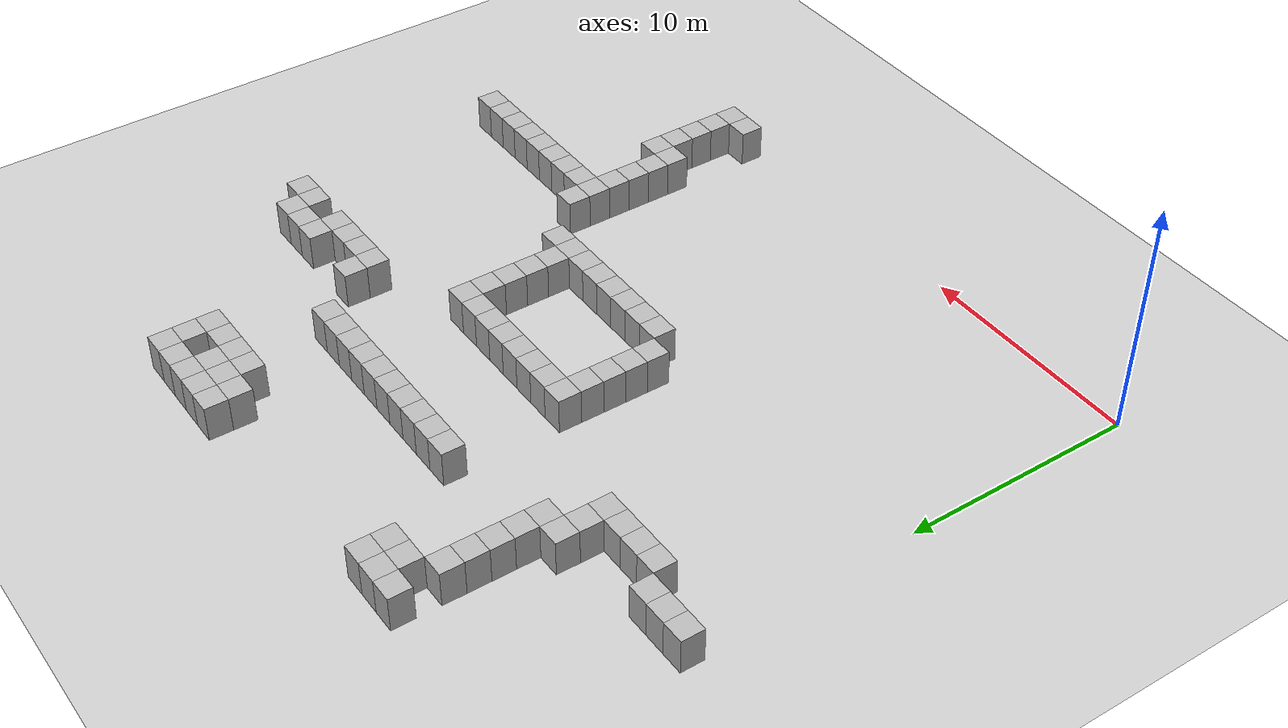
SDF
<sdf version="1.6">
 <world name="default">
  <model name="ground_plane">
   <static>1</static>
   <link name="link">
    <collision name="collision">
     <geometry><plane><normal>0 0 1</normal><size>100 100</size></plane></geometry>
     <surface>
      <contact><collide_bitmask>65535</collide_bitmask></contact>
      <friction><ode><mu>100</mu><mu2>50</mu2></ode></friction>
     </surface>
    </collision>
    <visual name="visual">
     <cast_shadows>0</cast_shadows>
     <geometry><plane><normal>0 0 1</normal><size>100 100</size></plane></geometry>
     <material>
      <script><uri>file://media/materials/scripts/gazebo.material</uri><name>Gazebo/Grey</name></script>
     </material>
    </visual>
   </link>
  </model>
  <light name="sun" type="directional">
   <pose>0 0 10 0 -0 0</pose>
   <diffuse>0.8 0.8 0.8 1</diffuse>
   <specular>0.2 0.2 0.2 1</specular>
   <attenuation>
    <range>1000</range>
    <constant>0.9</constant>
    <linear>0.01</linear>
    <quadratic>0.001</quadratic>
   </attenuation>
   <direction>-0.5 0.1 -0.9</direction>
  </light>
  <plugin name="obstacle" filename="libobstacle_plugin.so"/>
  <plugin name="model_push" filename="libpayload_joint_plugin.so"/>
  <plugin name="ros_interface_plugin" filename="librotors_gazebo_ros_interface_plugin.so"/>
  <spherical_coordinates>
   <surface_model>EARTH_WGS84</surface_model>
   <latitude_deg>47.3667</latitude_deg>
   <longitude_deg>8.55</longitude_deg>
   <elevation>500</elevation>
   <heading_deg>0</heading_deg>
  </spherical_coordinates>
  <physics name="default_physics" default="0" type="ode">
   <ode>
    <solver>
     <type>quick</type>
     <iters>100</iters>
     <sor>1.3</sor>
     <use_dynamic_moi_rescaling>0</use_dynamic_moi_rescaling>
    </solver>
    <constraints>
     <cfm>0</cfm>
     <erp>0.2</erp>
     <contact_max_correcting_vel>100</contact_max_correcting_vel>
     <contact_surface_layer>0.001</contact_surface_layer>
    </constraints>
   </ode>
   <max_step_size>0.004</max_step_size>
   <real_time_factor>1</real_time_factor>
   <real_time_update_rate>250</real_time_update_rate>
  </physics>
  <gravity>0 0 -9.8</gravity>
  <magnetic_field>6e-06 2.3e-05 -4.2e-05</magnetic_field>
  <atmosphere type="adiabatic"/>
  <scene><ambient>0.4 0.4 0.4 1</ambient><background>0.7 0.7 0.7 1</background><shadows>1</shadows></scene>
  <audio><device>default</device></audio>
  <model name="box_20">
   <static>1</static>
   <pose>0 20 0 0 -0 0</pose>
   <link name="link"><visual name="visual"><geometry><box><size>1 1 3</size></box></geometry></visual></link>
  </model>
  <model name="box_120">
   <static>1</static>
   <pose>1 20 0 0 -0 0</pose>
   <link name="link"><visual name="visual"><geometry><box><size>1 1 3</size></box></geometry></visual></link>
  </model>
  <model name="box_220">
   <static>1</static>
   <pose>2 20 0 0 -0 0</pose>
   <link name="link"><visual name="visual"><geometry><box><size>1 1 3</size></box></geometry></visual></link>
  </model>
  <model name="box_319">
   <static>1</static>
   <pose>3 19 0 0 -0 0</pose>
   <link name="link"><visual name="visual"><geometry><box><size>1 1 3</size></box></geometry></visual></link>
  </model>
  <model name="box_419">
   <static>1</static>
   <pose>4 19 0 0 -0 0</pose>
   <link name="link"><visual name="visual"><geometry><box><size>1 1 3</size></box></geometry></visual></link>
  </model>
  <model name="box_519">
   <static>1</static>
   <pose>5 19 0 0 -0 0</pose>
   <link name="link"><visual name="visual"><geometry><box><size>1 1 3</size></box></geometry></visual></link>
  </model>
  <model name="box_619">
   <static>1</static>
   <pose>6 19 0 0 -0 0</pose>
   <link name="link"><visual name="visual"><geometry><box><size>1 1 3</size></box></geometry></visual></link>
  </model>
  <model name="box_620">
   <static>1</static>
   <pose>6 20 0 0 -0 0</pose>
   <link name="link"><visual name="visual"><geometry><box><size>1 1 3</size></box></geometry></visual></link>
  </model>
  <model name="box_621">
   <static>1</static>
   <pose>6 21 0 0 -0 0</pose>
   <link name="link"><visual name="visual"><geometry><box><size>1 1 3</size></box></geometry></visual></link>
  </model>
  <model name="box_721">
   <static>1</static>
   <pose>7 21 0 0 -0 0</pose>
   <link name="link"><visual name="visual"><geometry><box><size>1 1 3</size></box></geometry></visual></link>
  </model>
  <model name="box_722">
   <static>1</static>
   <pose>7 22 0 0 -0 0</pose>
   <link name="link"><visual name="visual"><geometry><box><size>1 1 3</size></box></geometry></visual></link>
  </model>
  <model name="box_723">
   <static>1</static>
   <pose>7 23 0 0 -0 0</pose>
   <link name="link"><visual name="visual"><geometry><box><size>1 1 3</size></box></geometry></visual></link>
  </model>
  <model name="box_724">
   <static>1</static>
   <pose>7 24 0 0 -0 0</pose>
   <link name="link"><visual name="visual"><geometry><box><size>1 1 3</size></box></geometry></visual></link>
  </model>
  <model name="box_725">
   <static>1</static>
   <pose>7 25 0 0 -0 0</pose>
   <link name="link"><visual name="visual"><geometry><box><size>1 1 3</size></box></geometry></visual></link>
  </model>
  <model name="box_727">
   <static>1</static>
   <pose>7 27 0 0 -0 0</pose>
   <link name="link"><visual name="visual"><geometry><box><size>1 1 3</size></box></geometry></visual></link>
  </model>
  <model name="box_826">
   <static>1</static>
   <pose>8 26 0 0 -0 0</pose>
   <link name="link"><visual name="visual"><geometry><box><size>1 1 3</size></box></geometry></visual></link>
  </model>
  <model name="box_827">
   <static>1</static>
   <pose>8 27 0 0 -0 0</pose>
   <link name="link"><visual name="visual"><geometry><box><size>1 1 3</size></box></geometry></visual></link>
  </model>
  <model name="box_926">
   <static>1</static>
   <pose>9 26 0 0 -0 0</pose>
   <link name="link"><visual name="visual"><geometry><box><size>1 1 3</size></box></geometry></visual></link>
  </model>
  <model name="box_927">
   <static>1</static>
   <pose>9 27 0 0 -0 0</pose>
   <link name="link"><visual name="visual"><geometry><box><size>1 1 3</size></box></geometry></visual></link>
  </model>
  <model name="box_1213">
   <static>1</static>
   <pose>12 13 0 0 -0 0</pose>
   <link name="link"><visual name="visual"><geometry><box><size>1 1 3</size></box></geometry></visual></link>
  </model>
  <model name="box_1214">
   <static>1</static>
   <pose>12 14 0 0 -0 0</pose>
   <link name="link"><visual name="visual"><geometry><box><size>1 1 3</size></box></geometry></visual></link>
  </model>
  <model name="box_1215">
   <static>1</static>
   <pose>12 15 0 0 -0 0</pose>
   <link name="link"><visual name="visual"><geometry><box><size>1 1 3</size></box></geometry></visual></link>
  </model>
  <model name="box_1216">
   <static>1</static>
   <pose>12 16 0 0 -0 0</pose>
   <link name="link"><visual name="visual"><geometry><box><size>1 1 3</size></box></geometry></visual></link>
  </model>
  <model name="box_1217">
   <static>1</static>
   <pose>12 17 0 0 -0 0</pose>
   <link name="link"><visual name="visual"><geometry><box><size>1 1 3</size></box></geometry></visual></link>
  </model>
  <model name="box_1222">
   <static>1</static>
   <pose>12 22 0 0 -0 0</pose>
   <link name="link"><visual name="visual"><geometry><box><size>1 1 3</size></box></geometry></visual></link>
  </model>
  <model name="box_1312">
   <static>1</static>
   <pose>13 12 0 0 -0 0</pose>
   <link name="link"><visual name="visual"><geometry><box><size>1 1 3</size></box></geometry></visual></link>
  </model>
  <model name="box_1317">
   <static>1</static>
   <pose>13 17 0 0 -0 0</pose>
   <link name="link"><visual name="visual"><geometry><box><size>1 1 3</size></box></geometry></visual></link>
  </model>
  <model name="box_1322">
   <static>1</static>
   <pose>13 22 0 0 -0 0</pose>
   <link name="link"><visual name="visual"><geometry><box><size>1 1 3</size></box></geometry></visual></link>
  </model>
  <model name="box_1412">
   <static>1</static>
   <pose>14 12 0 0 -0 0</pose>
   <link name="link"><visual name="visual"><geometry><box><size>1 1 3</size></box></geometry></visual></link>
  </model>
  <model name="box_1417">
   <static>1</static>
   <pose>14 17 0 0 -0 0</pose>
   <link name="link"><visual name="visual"><geometry><box><size>1 1 3</size></box></geometry></visual></link>
  </model>
  <model name="box_1422">
   <static>1</static>
   <pose>14 22 0 0 -0 0</pose>
   <link name="link"><visual name="visual"><geometry><box><size>1 1 3</size></box></geometry></visual></link>
  </model>
  <model name="box_1512">
   <static>1</static>
   <pose>15 12 0 0 -0 0</pose>
   <link name="link"><visual name="visual"><geometry><box><size>1 1 3</size></box></geometry></visual></link>
  </model>
  <model name="box_1517">
   <static>1</static>
   <pose>15 17 0 0 -0 0</pose>
   <link name="link"><visual name="visual"><geometry><box><size>1 1 3</size></box></geometry></visual></link>
  </model>
  <model name="box_1522">
   <static>1</static>
   <pose>15 22 0 0 -0 0</pose>
   <link name="link"><visual name="visual"><geometry><box><size>1 1 3</size></box></geometry></visual></link>
  </model>
  <model name="box_1612">
   <static>1</static>
   <pose>16 12 0 0 -0 0</pose>
   <link name="link"><visual name="visual"><geometry><box><size>1 1 3</size></box></geometry></visual></link>
  </model>
  <model name="box_1617">
   <static>1</static>
   <pose>16 17 0 0 -0 0</pose>
   <link name="link"><visual name="visual"><geometry><box><size>1 1 3</size></box></geometry></visual></link>
  </model>
  <model name="box_1622">
   <static>1</static>
   <pose>16 22 0 0 -0 0</pose>
   <link name="link"><visual name="visual"><geometry><box><size>1 1 3</size></box></geometry></visual></link>
  </model>
  <model name="box_1712">
   <static>1</static>
   <pose>17 12 0 0 -0 0</pose>
   <link name="link"><visual name="visual"><geometry><box><size>1 1 3</size></box></geometry></visual></link>
  </model>
  <model name="box_1717">
   <static>1</static>
   <pose>17 17 0 0 -0 0</pose>
   <link name="link"><visual name="visual"><geometry><box><size>1 1 3</size></box></geometry></visual></link>
  </model>
  <model name="box_1722">
   <static>1</static>
   <pose>17 22 0 0 -0 0</pose>
   <link name="link"><visual name="visual"><geometry><box><size>1 1 3</size></box></geometry></visual></link>
  </model>
  <model name="box_1812">
   <static>1</static>
   <pose>18 12 0 0 -0 0</pose>
   <link name="link"><visual name="visual"><geometry><box><size>1 1 3</size></box></geometry></visual></link>
  </model>
  <model name="box_1817">
   <static>1</static>
   <pose>18 17 0 0 -0 0</pose>
   <link name="link"><visual name="visual"><geometry><box><size>1 1 3</size></box></geometry></visual></link>
  </model>
  <model name="box_1822">
   <static>1</static>
   <pose>18 22 0 0 -0 0</pose>
   <link name="link"><visual name="visual"><geometry><box><size>1 1 3</size></box></geometry></visual></link>
  </model>
  <model name="box_1912">
   <static>1</static>
   <pose>19 12 0 0 -0 0</pose>
   <link name="link"><visual name="visual"><geometry><box><size>1 1 3</size></box></geometry></visual></link>
  </model>
  <model name="box_1913">
   <static>1</static>
   <pose>19 13 0 0 -0 0</pose>
   <link name="link"><visual name="visual"><geometry><box><size>1 1 3</size></box></geometry></visual></link>
  </model>
  <model name="box_1914">
   <static>1</static>
   <pose>19 14 0 0 -0 0</pose>
   <link name="link"><visual name="visual"><geometry><box><size>1 1 3</size></box></geometry></visual></link>
  </model>
  <model name="box_1915">
   <static>1</static>
   <pose>19 15 0 0 -0 0</pose>
   <link name="link"><visual name="visual"><geometry><box><size>1 1 3</size></box></geometry></visual></link>
  </model>
  <model name="box_1916">
   <static>1</static>
   <pose>19 16 0 0 -0 0</pose>
   <link name="link"><visual name="visual"><geometry><box><size>1 1 3</size></box></geometry></visual></link>
  </model>
  <model name="box_1917">
   <static>1</static>
   <pose>19 17 0 0 -0 0</pose>
   <link name="link"><visual name="visual"><geometry><box><size>1 1 3</size></box></geometry></visual></link>
  </model>
  <model name="box_1922">
   <static>1</static>
   <pose>19 22 0 0 -0 0</pose>
   <link name="link"><visual name="visual"><geometry><box><size>1 1 3</size></box></geometry></visual></link>
  </model>
  <model name="box_1927">
   <static>1</static>
   <pose>19 27 0 0 -0 0</pose>
   <link name="link"><visual name="visual"><geometry><box><size>1 1 3</size></box></geometry></visual></link>
  </model>
  <model name="box_1928">
   <static>1</static>
   <pose>19 28 0 0 -0 0</pose>
   <link name="link"><visual name="visual"><geometry><box><size>1 1 3</size></box></geometry></visual></link>
  </model>
  <model name="box_2012">
   <static>1</static>
   <pose>20 12 0 0 -0 0</pose>
   <link name="link"><visual name="visual"><geometry><box><size>1 1 3</size></box></geometry></visual></link>
  </model>
  <model name="box_2022">
   <static>1</static>
   <pose>20 22 0 0 -0 0</pose>
   <link name="link"><visual name="visual"><geometry><box><size>1 1 3</size></box></geometry></visual></link>
  </model>
  <model name="box_2026">
   <static>1</static>
   <pose>20 26 0 0 -0 0</pose>
   <link name="link"><visual name="visual"><geometry><box><size>1 1 3</size></box></geometry></visual></link>
  </model>
  <model name="box_2027">
   <static>1</static>
   <pose>20 27 0 0 -0 0</pose>
   <link name="link"><visual name="visual"><geometry><box><size>1 1 3</size></box></geometry></visual></link>
  </model>
  <model name="box_2028">
   <static>1</static>
   <pose>20 28 0 0 -0 0</pose>
   <link name="link"><visual name="visual"><geometry><box><size>1 1 3</size></box></geometry></visual></link>
  </model>
  <model name="box_2122">
   <static>1</static>
   <pose>21 22 0 0 -0 0</pose>
   <link name="link"><visual name="visual"><geometry><box><size>1 1 3</size></box></geometry></visual></link>
  </model>
  <model name="box_2126">
   <static>1</static>
   <pose>21 26 0 0 -0 0</pose>
   <link name="link"><visual name="visual"><geometry><box><size>1 1 3</size></box></geometry></visual></link>
  </model>
  <model name="box_2127">
   <static>1</static>
   <pose>21 27 0 0 -0 0</pose>
   <link name="link"><visual name="visual"><geometry><box><size>1 1 3</size></box></geometry></visual></link>
  </model>
  <model name="box_2128">
   <static>1</static>
   <pose>21 28 0 0 -0 0</pose>
   <link name="link"><visual name="visual"><geometry><box><size>1 1 3</size></box></geometry></visual></link>
  </model>
  <model name="box_2201">
   <static>1</static>
   <pose>22 1 0 0 -0 0</pose>
   <link name="link"><visual name="visual"><geometry><box><size>1 1 3</size></box></geometry></visual></link>
  </model>
  <model name="box_2205">
   <static>1</static>
   <pose>22 5 0 0 -0 0</pose>
   <link name="link"><visual name="visual"><geometry><box><size>1 1 3</size></box></geometry></visual></link>
  </model>
  <model name="box_2206">
   <static>1</static>
   <pose>22 6 0 0 -0 0</pose>
   <link name="link"><visual name="visual"><geometry><box><size>1 1 3</size></box></geometry></visual></link>
  </model>
  <model name="box_2207">
   <static>1</static>
   <pose>22 7 0 0 -0 0</pose>
   <link name="link"><visual name="visual"><geometry><box><size>1 1 3</size></box></geometry></visual></link>
  </model>
  <model name="box_2208">
   <static>1</static>
   <pose>22 8 0 0 -0 0</pose>
   <link name="link"><visual name="visual"><geometry><box><size>1 1 3</size></box></geometry></visual></link>
  </model>
  <model name="box_2209">
   <static>1</static>
   <pose>22 9 0 0 -0 0</pose>
   <link name="link"><visual name="visual"><geometry><box><size>1 1 3</size></box></geometry></visual></link>
  </model>
  <model name="box_2210">
   <static>1</static>
   <pose>22 10 0 0 -0 0</pose>
   <link name="link"><visual name="visual"><geometry><box><size>1 1 3</size></box></geometry></visual></link>
  </model>
  <model name="box_2226">
   <static>1</static>
   <pose>22 26 0 0 -0 0</pose>
   <link name="link"><visual name="visual"><geometry><box><size>1 1 3</size></box></geometry></visual></link>
  </model>
  <model name="box_2228">
   <static>1</static>
   <pose>22 28 0 0 -0 0</pose>
   <link name="link"><visual name="visual"><geometry><box><size>1 1 3</size></box></geometry></visual></link>
  </model>
  <model name="box_2301">
   <static>1</static>
   <pose>23 1 0 0 -0 0</pose>
   <link name="link"><visual name="visual"><geometry><box><size>1 1 3</size></box></geometry></visual></link>
  </model>
  <model name="box_2302">
   <static>1</static>
   <pose>23 2 0 0 -0 0</pose>
   <link name="link"><visual name="visual"><geometry><box><size>1 1 3</size></box></geometry></visual></link>
  </model>
  <model name="box_2303">
   <static>1</static>
   <pose>23 3 0 0 -0 0</pose>
   <link name="link"><visual name="visual"><geometry><box><size>1 1 3</size></box></geometry></visual></link>
  </model>
  <model name="box_2304">
   <static>1</static>
   <pose>23 4 0 0 -0 0</pose>
   <link name="link"><visual name="visual"><geometry><box><size>1 1 3</size></box></geometry></visual></link>
  </model>
  <model name="box_2305">
   <static>1</static>
   <pose>23 5 0 0 -0 0</pose>
   <link name="link"><visual name="visual"><geometry><box><size>1 1 3</size></box></geometry></visual></link>
  </model>
  <model name="box_2309">
   <static>1</static>
   <pose>23 9 0 0 -0 0</pose>
   <link name="link"><visual name="visual"><geometry><box><size>1 1 3</size></box></geometry></visual></link>
  </model>
  <model name="box_2319">
   <static>1</static>
   <pose>23 19 0 0 -0 0</pose>
   <link name="link"><visual name="visual"><geometry><box><size>1 1 3</size></box></geometry></visual></link>
  </model>
  <model name="box_2320">
   <static>1</static>
   <pose>23 20 0 0 -0 0</pose>
   <link name="link"><visual name="visual"><geometry><box><size>1 1 3</size></box></geometry></visual></link>
  </model>
  <model name="box_2326">
   <static>1</static>
   <pose>23 26 0 0 -0 0</pose>
   <link name="link"><visual name="visual"><geometry><box><size>1 1 3</size></box></geometry></visual></link>
  </model>
  <model name="box_2327">
   <static>1</static>
   <pose>23 27 0 0 -0 0</pose>
   <link name="link"><visual name="visual"><geometry><box><size>1 1 3</size></box></geometry></visual></link>
  </model>
  <model name="box_2328">
   <static>1</static>
   <pose>23 28 0 0 -0 0</pose>
   <link name="link"><visual name="visual"><geometry><box><size>1 1 3</size></box></geometry></visual></link>
  </model>
  <model name="box_2409">
   <static>1</static>
   <pose>24 9 0 0 -0 0</pose>
   <link name="link"><visual name="visual"><geometry><box><size>1 1 3</size></box></geometry></visual></link>
  </model>
  <model name="box_2419">
   <static>1</static>
   <pose>24 19 0 0 -0 0</pose>
   <link name="link"><visual name="visual"><geometry><box><size>1 1 3</size></box></geometry></visual></link>
  </model>
  <model name="box_2509">
   <static>1</static>
   <pose>25 9 0 0 -0 0</pose>
   <link name="link"><visual name="visual"><geometry><box><size>1 1 3</size></box></geometry></visual></link>
  </model>
  <model name="box_2519">
   <static>1</static>
   <pose>25 19 0 0 -0 0</pose>
   <link name="link"><visual name="visual"><geometry><box><size>1 1 3</size></box></geometry></visual></link>
  </model>
  <model name="box_2609">
   <static>1</static>
   <pose>26 9 0 0 -0 0</pose>
   <link name="link"><visual name="visual"><geometry><box><size>1 1 3</size></box></geometry></visual></link>
  </model>
  <model name="box_2619">
   <static>1</static>
   <pose>26 19 0 0 -0 0</pose>
   <link name="link"><visual name="visual"><geometry><box><size>1 1 3</size></box></geometry></visual></link>
  </model>
  <model name="box_2620">
   <static>1</static>
   <pose>26 20 0 0 -0 0</pose>
   <link name="link"><visual name="visual"><geometry><box><size>1 1 3</size></box></geometry></visual></link>
  </model>
  <model name="box_2709">
   <static>1</static>
   <pose>27 9 0 0 -0 0</pose>
   <link name="link"><visual name="visual"><geometry><box><size>1 1 3</size></box></geometry></visual></link>
  </model>
  <model name="box_2720">
   <static>1</static>
   <pose>27 20 0 0 -0 0</pose>
   <link name="link"><visual name="visual"><geometry><box><size>1 1 3</size></box></geometry></visual></link>
  </model>
  <model name="box_2809">
   <static>1</static>
   <pose>28 9 0 0 -0 0</pose>
   <link name="link"><visual name="visual"><geometry><box><size>1 1 3</size></box></geometry></visual></link>
  </model>
  <model name="box_2819">
   <static>1</static>
   <pose>28 19 0 0 -0 0</pose>
   <link name="link"><visual name="visual"><geometry><box><size>1 1 3</size></box></geometry></visual></link>
  </model>
  <model name="box_2820">
   <static>1</static>
   <pose>28 20 0 0 -0 0</pose>
   <link name="link"><visual name="visual"><geometry><box><size>1 1 3</size></box></geometry></visual></link>
  </model>
  <model name="box_2909">
   <static>1</static>
   <pose>29 9 0 0 -0 0</pose>
   <link name="link"><visual name="visual"><geometry><box><size>1 1 3</size></box></geometry></visual></link>
  </model>
  <model name="box_2919">
   <static>1</static>
   <pose>29 19 0 0 -0 0</pose>
   <link name="link"><visual name="visual"><geometry><box><size>1 1 3</size></box></geometry></visual></link>
  </model>
  <model name="box_3009">
   <static>1</static>
   <pose>30 9 0 0 -0 0</pose>
   <link name="link"><visual name="visual"><geometry><box><size>1 1 3</size></box></geometry></visual></link>
  </model>
 </world>
</sdf>
